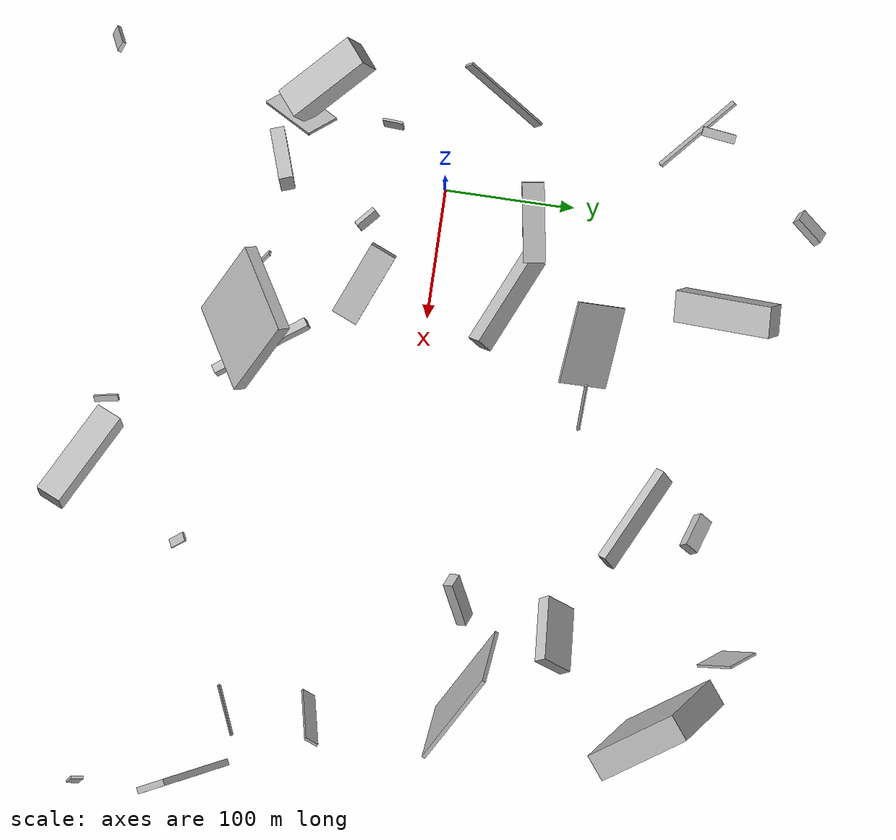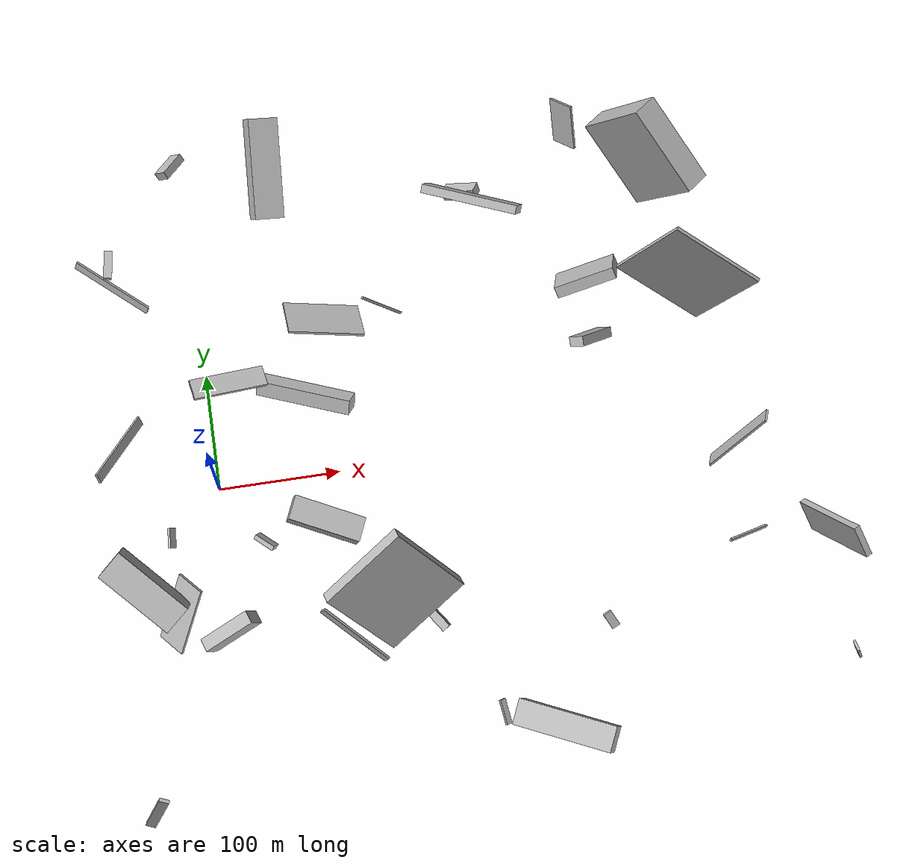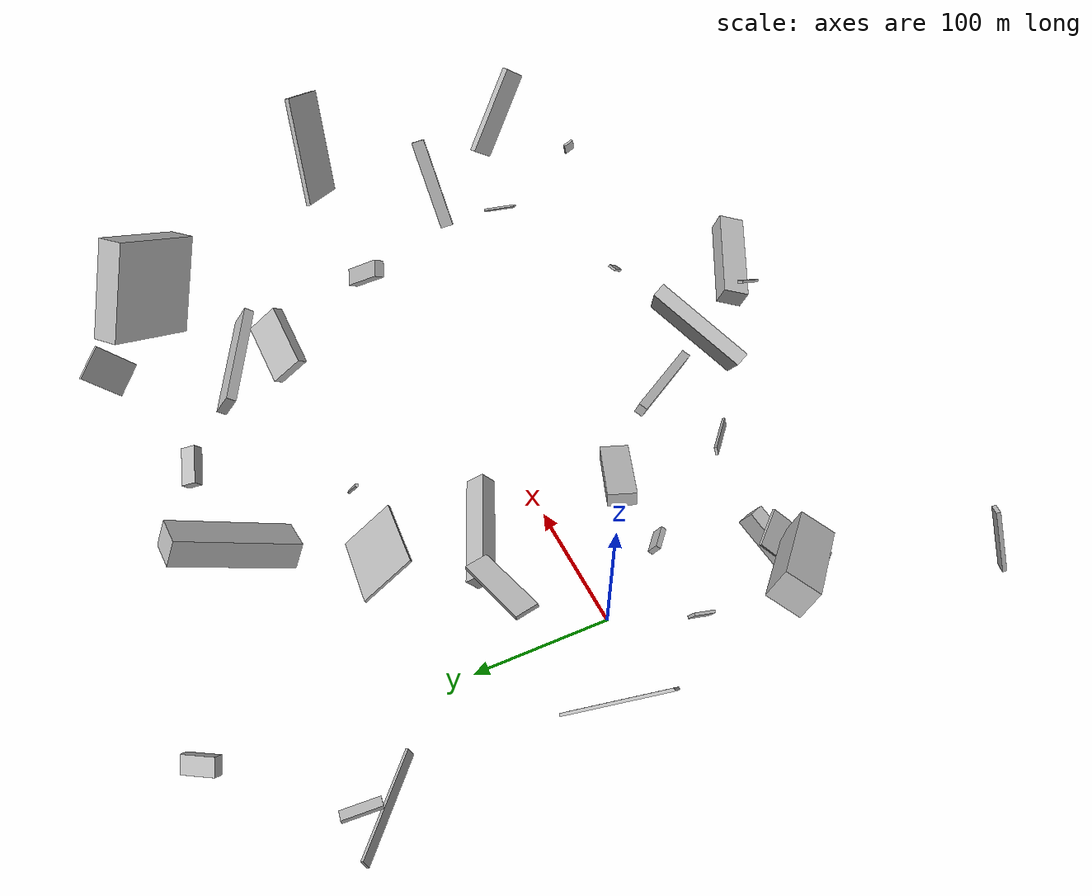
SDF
<sdf version="1.6">
 <world name="default">
  <scene>
   <sky><clouds><speed>12</speed></clouds></sky>
   <ambient>0.4 0.4 0.4 1</ambient>
   <background>0.7 0.7 0.7 1</background>
   <shadows>1</shadows>
  </scene>
  <gravity>0 0 -9.8066</gravity>
  <magnetic_field>6e-06 2.3e-05 -4.2e-05</magnetic_field>
  <physics default="0" name="default_physics" type="ode">
   <ode>
    <solver>
     <type>quick</type>
     <iters>10</iters>
     <sor>1.0</sor>
     <use_dynamic_moi_rescaling>0</use_dynamic_moi_rescaling>
    </solver>
    <constraints>
     <cfm>0</cfm>
     <erp>0.2</erp>
     <contact_max_correcting_vel>100</contact_max_correcting_vel>
     <contact_surface_layer>0.001</contact_surface_layer>
    </constraints>
   </ode>
   <max_step_size>0.004</max_step_size>
   <real_time_factor>1</real_time_factor>
   <real_time_update_rate>250</real_time_update_rate>
  </physics>
  <light name="sun" type="directional">
   <pose>0 0 10 0 0 0</pose>
   <diffuse>0.8 0.8 0.8 1</diffuse>
   <specular>0.2 0.2 0.2 1</specular>
   <attenuation>
    <range>1000</range>
    <constant>0.9</constant>
    <linear>0.01</linear>
    <quadratic>0.001</quadratic>
   </attenuation>
   <direction>-0.5 0.1 -0.9</direction>
  </light>
  <model name="building_1">
   <static>0</static>
   <pose>50.467670125716886 75.61910942002838 48.496256075623705 -0.09714231294115996 -1.2993663020135096 0.26419812760609523</pose>
   <link name="link">
    <gravity>0</gravity>
    <pose>0 0 31.0 0 0 0</pose>
    <collision name="collision"><geometry><box><size>3 17 62</size></box></geometry></collision>
    <visual name="visual">
     <cast_shadows>0</cast_shadows>
     <geometry><box><size>3 17 62</size></box></geometry>
     <material>
      <script>
       <uri>model://HANNAS_wall/materials/scripts</uri>
       <uri>model://HANNAS_wall/materials/textures</uri>
       <name>vrc/HANNAS_wall</name>
      </script>
     </material>
    </visual>
   </link>
  </model>
  <model name="building_2">
   <static>0</static>
   <pose>487.5978093570025 -215.26162930433895 16.56926928168464 1.3449141325536027 0.33225365892161074 1.7059899753248742</pose>
   <link name="link">
    <gravity>0</gravity>
    <pose>0 0 1.0 0 0 0</pose>
    <collision name="collision"><geometry><box><size>10 13 2</size></box></geometry></collision>
    <visual name="visual">
     <cast_shadows>0</cast_shadows>
     <geometry><box><size>10 13 2</size></box></geometry>
     <material>
      <script>
       <uri>model://HANNAS_wall/materials/scripts</uri>
       <uri>model://HANNAS_wall/materials/textures</uri>
       <name>vrc/HANNAS_wall</name>
      </script>
     </material>
    </visual>
   </link>
  </model>
  <model name="building_3">
   <static>0</static>
   <pose>144.5761929839812 -119.97691102650037 43.173347825103626 0.15481648034703296 -0.29552185130263686 0.5605097340469433</pose>
   <link name="link">
    <gravity>0</gravity>
    <pose>0 0 4.5 0 0 0</pose>
    <collision name="collision"><geometry><box><size>7 80 9</size></box></geometry></collision>
    <visual name="visual">
     <cast_shadows>0</cast_shadows>
     <geometry><box><size>7 80 9</size></box></geometry>
     <material>
      <script>
       <uri>model://HANNAS_wall/materials/scripts</uri>
       <uri>model://HANNAS_wall/materials/textures</uri>
       <name>vrc/HANNAS_wall</name>
      </script>
     </material>
    </visual>
   </link>
  </model>
  <model name="building_4">
   <static>0</static>
   <pose>26.223606252253962 -49.73983206224006 20.083442631692257 1.601667302387258 -0.5298798715585628 0.8175822189812869</pose>
   <link name="link">
    <gravity>0</gravity>
    <pose>0 0 9.0 0 0 0</pose>
    <collision name="collision"><geometry><box><size>4 10 18</size></box></geometry></collision>
    <visual name="visual">
     <cast_shadows>0</cast_shadows>
     <geometry><box><size>4 10 18</size></box></geometry>
     <material>
      <script>
       <uri>model://HANNAS_wall/materials/scripts</uri>
       <uri>model://HANNAS_wall/materials/textures</uri>
       <name>vrc/HANNAS_wall</name>
      </script>
     </material>
    </visual>
   </link>
  </model>
  <model name="building_5">
   <static>0</static>
   <pose>104.1806429320685 127.5056746607481 20.495078721349905 0.2881207769559702 0.5855445824000672 1.6340296611304184</pose>
   <link name="link">
    <gravity>0</gravity>
    <pose>0 0 1.0 0 0 0</pose>
    <collision name="collision"><geometry><box><size>43 64 2</size></box></geometry></collision>
    <visual name="visual">
     <cast_shadows>0</cast_shadows>
     <geometry><box><size>43 64 2</size></box></geometry>
     <material>
      <script>
       <uri>model://HANNAS_wall/materials/scripts</uri>
       <uri>model://HANNAS_wall/materials/textures</uri>
       <name>vrc/HANNAS_wall</name>
      </script>
     </material>
    </visual>
   </link>
  </model>
  <model name="building_6">
   <static>0</static>
   <pose>200.70368263013972 -231.13492926898263 66.18940398718595 -2.689229448681338 0.5310255247812788 0.38078019945896446</pose>
   <link name="link">
    <gravity>0</gravity>
    <pose>0 0 1.0 0 0 0</pose>
    <collision name="collision"><geometry><box><size>5 20 2</size></box></geometry></collision>
    <visual name="visual">
     <cast_shadows>0</cast_shadows>
     <geometry><box><size>5 20 2</size></box></geometry>
     <material>
      <script>
       <uri>model://HANNAS_wall/materials/scripts</uri>
       <uri>model://HANNAS_wall/materials/textures</uri>
       <name>vrc/HANNAS_wall</name>
      </script>
     </material>
    </visual>
   </link>
  </model>
  <model name="building_7">
   <static>0</static>
   <pose>250.3549453723648 -235.9320475057632 49.60771074848421 -1.834741114831841 0.192417608084627 2.66355450272214</pose>
   <link name="link">
    <gravity>0</gravity>
    <pose>0 0 10.5 0 0 0</pose>
    <collision name="collision"><geometry><box><size>80 17 21</size></box></geometry></collision>
    <visual name="visual">
     <cast_shadows>0</cast_shadows>
     <geometry><box><size>80 17 21</size></box></geometry>
     <material>
      <script>
       <uri>model://HANNAS_wall/materials/scripts</uri>
       <uri>model://HANNAS_wall/materials/textures</uri>
       <name>vrc/HANNAS_wall</name>
      </script>
     </material>
    </visual>
   </link>
  </model>
  <model name="building_8">
   <static>0</static>
   <pose>464.0084907285723 -109.32284883691541 56.32132652251838 0.037154558598803136 -0.6752769041426504 2.0028846096573756</pose>
   <link name="link">
    <gravity>0</gravity>
    <pose>0 0 39.5 0 0 0</pose>
    <collision name="collision"><geometry><box><size>27 5 79</size></box></geometry></collision>
    <visual name="visual">
     <cast_shadows>0</cast_shadows>
     <geometry><box><size>27 5 79</size></box></geometry>
     <material>
      <script>
       <uri>model://HANNAS_wall/materials/scripts</uri>
       <uri>model://HANNAS_wall/materials/textures</uri>
       <name>vrc/HANNAS_wall</name>
      </script>
     </material>
    </visual>
   </link>
  </model>
  <model name="building_9">
   <static>0</static>
   <pose>94.26425433758915 -143.98122278173298 25.871878014402043 -1.1741352587589005 -0.48907447352169753 2.419362593646274</pose>
   <link name="link">
    <gravity>0</gravity>
    <pose>0 0 1.0 0 0 0</pose>
    <collision name="collision"><geometry><box><size>68 6 2</size></box></geometry></collision>
    <visual name="visual">
     <cast_shadows>0</cast_shadows>
     <geometry><box><size>68 6 2</size></box></geometry>
     <material>
      <script>
       <uri>model://HANNAS_wall/materials/scripts</uri>
       <uri>model://HANNAS_wall/materials/textures</uri>
       <name>vrc/HANNAS_wall</name>
      </script>
     </material>
    </visual>
   </link>
  </model>
  <model name="building_10">
   <static>0</static>
   <pose>322.3537356962371 271.4624621362144 43.30322683526242 0.9679616006294709 0.3073283172927695 0.4479593629259448</pose>
   <link name="link">
    <gravity>0</gravity>
    <pose>0 0 13.5 0 0 0</pose>
    <collision name="collision"><geometry><box><size>2 39 27</size></box></geometry></collision>
    <visual name="visual">
     <cast_shadows>0</cast_shadows>
     <geometry><box><size>2 39 27</size></box></geometry>
     <material>
      <script>
       <uri>model://HANNAS_wall/materials/scripts</uri>
       <uri>model://HANNAS_wall/materials/textures</uri>
       <name>vrc/HANNAS_wall</name>
      </script>
     </material>
    </visual>
   </link>
  </model>
  <model name="building_11">
   <static>0</static>
   <pose>-41.44035808297771 -53.62080103934436 33.46117765797173 -1.2901597063873758 -0.4077551096045244 -0.20783855950152522</pose>
   <link name="link">
    <gravity>0</gravity>
    <pose>0 0 8.0 0 0 0</pose>
    <collision name="collision"><geometry><box><size>2 9 16</size></box></geometry></collision>
    <visual name="visual">
     <cast_shadows>0</cast_shadows>
     <geometry><box><size>2 9 16</size></box></geometry>
     <material>
      <script>
       <uri>model://HANNAS_wall/materials/scripts</uri>
       <uri>model://HANNAS_wall/materials/textures</uri>
       <name>vrc/HANNAS_wall</name>
      </script>
     </material>
    </visual>
   </link>
  </model>
  <model name="building_12">
   <static>0</static>
   <pose>325.01834265414345 120.69095510655414 36.68516271489841 2.681514490532452 -0.6830165448788065 1.9456588985487562</pose>
   <link name="link">
    <gravity>0</gravity>
    <pose>0 0 15.0 0 0 0</pose>
    <collision name="collision"><geometry><box><size>10 52 30</size></box></geometry></collision>
    <visual name="visual">
     <cast_shadows>0</cast_shadows>
     <geometry><box><size>10 52 30</size></box></geometry>
     <material>
      <script>
       <uri>model://HANNAS_wall/materials/scripts</uri>
       <uri>model://HANNAS_wall/materials/textures</uri>
       <name>vrc/HANNAS_wall</name>
      </script>
     </material>
    </visual>
   </link>
  </model>
  <model name="building_13">
   <static>0</static>
   <pose>-1.6930124356951217 -131.65024371388807 25.12298683034649 1.5295787051505965 -1.1252214071003777 -2.7758018074686843</pose>
   <link name="link">
    <gravity>0</gravity>
    <pose>0 0 5.5 0 0 0</pose>
    <collision name="collision"><geometry><box><size>18 46 11</size></box></geometry></collision>
    <visual name="visual">
     <cast_shadows>0</cast_shadows>
     <geometry><box><size>18 46 11</size></box></geometry>
     <material>
      <script>
       <uri>model://HANNAS_wall/materials/scripts</uri>
       <uri>model://HANNAS_wall/materials/textures</uri>
       <name>vrc/HANNAS_wall</name>
      </script>
     </material>
    </visual>
   </link>
  </model>
  <model name="building_14">
   <static>0</static>
   <pose>-49.533996618910294 -134.74160258123658 44.144649118996384 -0.7918666097948699 -0.32988040466095475 -0.88404715464737</pose>
   <link name="link">
    <gravity>0</gravity>
    <pose>0 0 29.5 0 0 0</pose>
    <collision name="collision"><geometry><box><size>26 2 59</size></box></geometry></collision>
    <visual name="visual">
     <cast_shadows>0</cast_shadows>
     <geometry><box><size>26 2 59</size></box></geometry>
     <material>
      <script>
       <uri>model://HANNAS_wall/materials/scripts</uri>
       <uri>model://HANNAS_wall/materials/textures</uri>
       <name>vrc/HANNAS_wall</name>
      </script>
     </material>
    </visual>
   </link>
  </model>
  <model name="building_15">
   <static>0</static>
   <pose>319.70455857850584 52.5911682551117 90.25914896552477 -2.4763905200175174 0.7054710266194101 0.4872776174857373</pose>
   <link name="link">
    <gravity>0</gravity>
    <pose>0 0 6.5 0 0 0</pose>
    <collision name="collision"><geometry><box><size>40 8 13</size></box></geometry></collision>
    <visual name="visual">
     <cast_shadows>0</cast_shadows>
     <geometry><box><size>40 8 13</size></box></geometry>
     <material>
      <script>
       <uri>model://HANNAS_wall/materials/scripts</uri>
       <uri>model://HANNAS_wall/materials/textures</uri>
       <name>vrc/HANNAS_wall</name>
      </script>
     </material>
    </visual>
   </link>
  </model>
  <model name="building_16">
   <static>0</static>
   <pose>-73.67105295580562 34.31738660921859 37.58876690629662 2.1449267752189076 -0.5586370534140713 -2.088728879424599</pose>
   <link name="link">
    <gravity>0</gravity>
    <pose>0 0 1.0 0 0 0</pose>
    <collision name="collision"><geometry><box><size>80 8 2</size></box></geometry></collision>
    <visual name="visual">
     <cast_shadows>0</cast_shadows>
     <geometry><box><size>80 8 2</size></box></geometry>
     <material>
      <script>
       <uri>model://HANNAS_wall/materials/scripts</uri>
       <uri>model://HANNAS_wall/materials/textures</uri>
       <name>vrc/HANNAS_wall</name>
      </script>
     </material>
    </visual>
   </link>
  </model>
  <model name="building_17">
   <static>0</static>
   <pose>151.63008072134457 -148.2700797330325 81.77417266751708 0.4702192572229394 -0.5802083271821725 -1.3173749196234263</pose>
   <link name="link">
    <gravity>0</gravity>
    <pose>0 0 40.0 0 0 0</pose>
    <collision name="collision"><geometry><box><size>10 75 80</size></box></geometry></collision>
    <visual name="visual">
     <cast_shadows>0</cast_shadows>
     <geometry><box><size>10 75 80</size></box></geometry>
     <material>
      <script>
       <uri>model://HANNAS_wall/materials/scripts</uri>
       <uri>model://HANNAS_wall/materials/textures</uri>
       <name>vrc/HANNAS_wall</name>
      </script>
     </material>
    </visual>
   </link>
  </model>
  <model name="building_18">
   <static>0</static>
   <pose>154.53037991177155 128.17266834149785 35.80797442792705 -2.106990147330945 -0.9530110045291926 3.109930684802165</pose>
   <link name="link">
    <gravity>0</gravity>
    <pose>0 0 1.0 0 0 0</pose>
    <collision name="collision"><geometry><box><size>53 2 2</size></box></geometry></collision>
    <visual name="visual">
     <cast_shadows>0</cast_shadows>
     <geometry><box><size>53 2 2</size></box></geometry>
     <material>
      <script>
       <uri>model://HANNAS_wall/materials/scripts</uri>
       <uri>model://HANNAS_wall/materials/textures</uri>
       <name>vrc/HANNAS_wall</name>
      </script>
     </material>
    </visual>
   </link>
  </model>
  <model name="building_19">
   <static>0</static>
   <pose>297.2082176575682 -162.9914587639292 26.463905891699934 -0.6873105757318588 0.17575905136391345 -2.7078764310107952</pose>
   <link name="link">
    <gravity>0</gravity>
    <pose>0 0 1.0 0 0 0</pose>
    <collision name="collision"><geometry><box><size>7 15 2</size></box></geometry></collision>
    <visual name="visual">
     <cast_shadows>0</cast_shadows>
     <geometry><box><size>7 15 2</size></box></geometry>
     <material>
      <script>
       <uri>model://HANNAS_wall/materials/scripts</uri>
       <uri>model://HANNAS_wall/materials/textures</uri>
       <name>vrc/HANNAS_wall</name>
      </script>
     </material>
    </visual>
   </link>
  </model>
  <model name="building_20">
   <static>0</static>
   <pose>-14.021551554048045 270.51939831868657 39.634388422532695 -1.9716388822042443 -0.6963580291849483 -0.4005844699285719</pose>
   <link name="link">
    <gravity>0</gravity>
    <pose>0 0 12.5 0 0 0</pose>
    <collision name="collision"><geometry><box><size>12 7 25</size></box></geometry></collision>
    <visual name="visual">
     <cast_shadows>0</cast_shadows>
     <geometry><box><size>12 7 25</size></box></geometry>
     <material>
      <script>
       <uri>model://HANNAS_wall/materials/scripts</uri>
       <uri>model://HANNAS_wall/materials/textures</uri>
       <name>vrc/HANNAS_wall</name>
      </script>
     </material>
    </visual>
   </link>
  </model>
  <model name="building_21">
   <static>0</static>
   <pose>-51.34457412744497 -91.94549534340685 91.67270217865652 -1.9250236136387224 -0.3019337949856472 2.343796365342935</pose>
   <link name="link">
    <gravity>0</gravity>
    <pose>0 0 12.5 0 0 0</pose>
    <collision name="collision"><geometry><box><size>68 23 25</size></box></geometry></collision>
    <visual name="visual">
     <cast_shadows>0</cast_shadows>
     <geometry><box><size>68 23 25</size></box></geometry>
     <material>
      <script>
       <uri>model://HANNAS_wall/materials/scripts</uri>
       <uri>model://HANNAS_wall/materials/textures</uri>
       <name>vrc/HANNAS_wall</name>
      </script>
     </material>
    </visual>
   </link>
  </model>
  <model name="building_22">
   <static>0</static>
   <pose>418.21718337255675 48.486488606330056 144.62949294406576 1.0706170981629943 -0.18539077620381056 -2.0096715326889667</pose>
   <link name="link">
    <gravity>0</gravity>
    <pose>0 0 40.0 0 0 0</pose>
    <collision name="collision"><geometry><box><size>3 80 80</size></box></geometry></collision>
    <visual name="visual">
     <cast_shadows>0</cast_shadows>
     <geometry><box><size>3 80 80</size></box></geometry>
     <material>
      <script>
       <uri>model://HANNAS_wall/materials/scripts</uri>
       <uri>model://HANNAS_wall/materials/textures</uri>
       <name>vrc/HANNAS_wall</name>
      </script>
     </material>
    </visual>
   </link>
  </model>
  <model name="building_23">
   <static>0</static>
   <pose>117.64633659124375 43.00770131715825 41.42026510130694 1.7451326283712914 0.8483094920848822 -1.8561305524689389</pose>
   <link name="link">
    <gravity>0</gravity>
    <pose>0 0 40.0 0 0 0</pose>
    <collision name="collision"><geometry><box><size>13 15 80</size></box></geometry></collision>
    <visual name="visual">
     <cast_shadows>0</cast_shadows>
     <geometry><box><size>13 15 80</size></box></geometry>
     <material>
      <script>
       <uri>model://HANNAS_wall/materials/scripts</uri>
       <uri>model://HANNAS_wall/materials/textures</uri>
       <name>vrc/HANNAS_wall</name>
      </script>
     </material>
    </visual>
   </link>
  </model>
  <model name="building_24">
   <static>0</static>
   <pose>85.20188500761057 -50.810301556261784 43.644376937543505 3.0919612265088747 0.27154465047651993 -0.4063624727395259</pose>
   <link name="link">
    <gravity>0</gravity>
    <pose>0 0 5.0 0 0 0</pose>
    <collision name="collision"><geometry><box><size>60 21 10</size></box></geometry></collision>
    <visual name="visual">
     <cast_shadows>0</cast_shadows>
     <geometry><box><size>60 21 10</size></box></geometry>
     <material>
      <script>
       <uri>model://HANNAS_wall/materials/scripts</uri>
       <uri>model://HANNAS_wall/materials/textures</uri>
       <name>vrc/HANNAS_wall</name>
      </script>
     </material>
    </visual>
   </link>
  </model>
  <model name="building_25">
   <static>0</static>
   <pose>398.91357494092586 223.26626931258238 69.88902203589659 1.4049989302940706 0.5389287149484046 -0.9898496139073106</pose>
   <link name="link">
    <gravity>0</gravity>
    <pose>0 0 11.0 0 0 0</pose>
    <collision name="collision"><geometry><box><size>80 80 22</size></box></geometry></collision>
    <visual name="visual">
     <cast_shadows>0</cast_shadows>
     <geometry><box><size>80 80 22</size></box></geometry>
     <material>
      <script>
       <uri>model://HANNAS_wall/materials/scripts</uri>
       <uri>model://HANNAS_wall/materials/textures</uri>
       <name>vrc/HANNAS_wall</name>
      </script>
     </material>
    </visual>
   </link>
  </model>
  <model name="building_26">
   <static>0</static>
   <pose>233.4930536491397 222.1447640563331 22.823624766438517 2.396686769596707 -0.9436086218809809 1.9025068220422277</pose>
   <link name="link">
    <gravity>0</gravity>
    <pose>0 0 6.0 0 0 0</pose>
    <collision name="collision"><geometry><box><size>9 29 12</size></box></geometry></collision>
    <visual name="visual">
     <cast_shadows>0</cast_shadows>
     <geometry><box><size>9 29 12</size></box></geometry>
     <material>
      <script>
       <uri>model://HANNAS_wall/materials/scripts</uri>
       <uri>model://HANNAS_wall/materials/textures</uri>
       <name>vrc/HANNAS_wall</name>
      </script>
     </material>
    </visual>
   </link>
  </model>
  <model name="building_27">
   <static>0</static>
   <pose>399.0769947855971 -48.08724797802606 38.0174442943417 0.42037624231596027 0.3121610298673515 1.2052560567018558</pose>
   <link name="link">
    <gravity>0</gravity>
    <pose>0 0 39.5 0 0 0</pose>
    <collision name="collision"><geometry><box><size>11 2 79</size></box></geometry></collision>
    <visual name="visual">
     <cast_shadows>0</cast_shadows>
     <geometry><box><size>11 2 79</size></box></geometry>
     <material>
      <script>
       <uri>model://HANNAS_wall/materials/scripts</uri>
       <uri>model://HANNAS_wall/materials/textures</uri>
       <name>vrc/HANNAS_wall</name>
      </script>
     </material>
    </visual>
   </link>
  </model>
  <model name="building_28">
   <static>0</static>
   <pose>238.13679641567936 180.52969584541364 113.42489057045145 -2.1071958168450076 0.11750345516548742 2.688760251409875</pose>
   <link name="link">
    <gravity>0</gravity>
    <pose>0 0 3.5 0 0 0</pose>
    <collision name="collision"><geometry><box><size>80 19 7</size></box></geometry></collision>
    <visual name="visual">
     <cast_shadows>0</cast_shadows>
     <geometry><box><size>80 19 7</size></box></geometry>
     <material>
      <script>
       <uri>model://HANNAS_wall/materials/scripts</uri>
       <uri>model://HANNAS_wall/materials/textures</uri>
       <name>vrc/HANNAS_wall</name>
      </script>
     </material>
    </visual>
   </link>
  </model>
  <model name="building_29">
   <static>0</static>
   <pose>419.6442993162476 -108.3626440468856 22.643015396695745 -0.9631477460304153 -0.5928332771004461 -2.7648930281445616</pose>
   <link name="link">
    <gravity>0</gravity>
    <pose>0 0 1.0 0 0 0</pose>
    <collision name="collision"><geometry><box><size>46 2 2</size></box></geometry></collision>
    <visual name="visual">
     <cast_shadows>0</cast_shadows>
     <geometry><box><size>46 2 2</size></box></geometry>
     <material>
      <script>
       <uri>model://HANNAS_wall/materials/scripts</uri>
       <uri>model://HANNAS_wall/materials/textures</uri>
       <name>vrc/HANNAS_wall</name>
      </script>
     </material>
    </visual>
   </link>
  </model>
  <model name="building_30">
   <static>0</static>
   <pose>71.8355429204594 188.50764797000988 104.81896693318181 -0.5559550937315063 -1.0142899795922555 -1.0229650502654235</pose>
   <link name="link">
    <gravity>0</gravity>
    <pose>0 0 40.0 0 0 0</pose>
    <collision name="collision"><geometry><box><size>17 24 80</size></box></geometry></collision>
    <visual name="visual">
     <cast_shadows>0</cast_shadows>
     <geometry><box><size>17 24 80</size></box></geometry>
     <material>
      <script>
       <uri>model://HANNAS_wall/materials/scripts</uri>
       <uri>model://HANNAS_wall/materials/textures</uri>
       <name>vrc/HANNAS_wall</name>
      </script>
     </material>
    </visual>
   </link>
  </model>
  <model name="building_31">
   <static>0</static>
   <pose>-68.99158281666324 184.89854061756756 17.234274648814456 -2.062907257400349 0.03272100189054246 -0.7278706758380367</pose>
   <link name="link">
    <gravity>0</gravity>
    <pose>0 0 1.0 0 0 0</pose>
    <collision name="collision"><geometry><box><size>74 7 2</size></box></geometry></collision>
    <visual name="visual">
     <cast_shadows>0</cast_shadows>
     <geometry><box><size>74 7 2</size></box></geometry>
     <material>
      <script>
       <uri>model://HANNAS_wall/materials/scripts</uri>
       <uri>model://HANNAS_wall/materials/textures</uri>
       <name>vrc/HANNAS_wall</name>
      </script>
     </material>
    </visual>
   </link>
  </model>
  <model name="building_32">
   <static>0</static>
   <pose>-65.189298915194 201.17679635806272 26.746334541668553 -1.4077125310566836 0.10378166810632088 1.4549962683500013</pose>
   <link name="link">
    <gravity>0</gravity>
    <pose>0 0 3.5 0 0 0</pose>
    <collision name="collision"><geometry><box><size>26 3 7</size></box></geometry></collision>
    <visual name="visual">
     <cast_shadows>0</cast_shadows>
     <geometry><box><size>26 3 7</size></box></geometry>
     <material>
      <script>
       <uri>model://HANNAS_wall/materials/scripts</uri>
       <uri>model://HANNAS_wall/materials/textures</uri>
       <name>vrc/HANNAS_wall</name>
      </script>
     </material>
    </visual>
   </link>
  </model>
  <model name="building_33">
   <static>0</static>
   <pose>-78.99259130000124 -261.38904844453197 39.48471599505856 -2.3578217993910138 1.1904421847519222 -2.688617144607745</pose>
   <link name="link">
    <gravity>0</gravity>
    <pose>0 0 4.0 0 0 0</pose>
    <collision name="collision"><geometry><box><size>54 3 8</size></box></geometry></collision>
    <visual name="visual">
     <cast_shadows>0</cast_shadows>
     <geometry><box><size>54 3 8</size></box></geometry>
     <material>
      <script>
       <uri>model://HANNAS_wall/materials/scripts</uri>
       <uri>model://HANNAS_wall/materials/textures</uri>
       <name>vrc/HANNAS_wall</name>
      </script>
     </material>
    </visual>
   </link>
  </model>
 </world>
</sdf>
